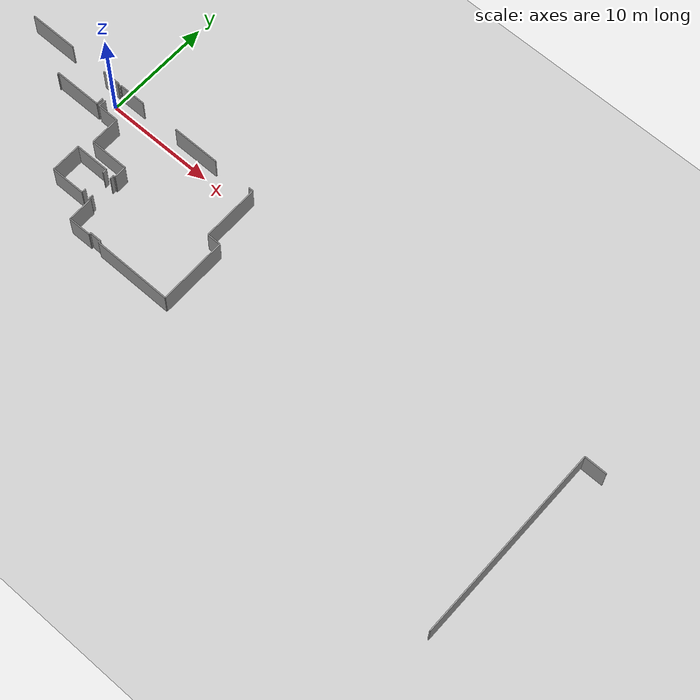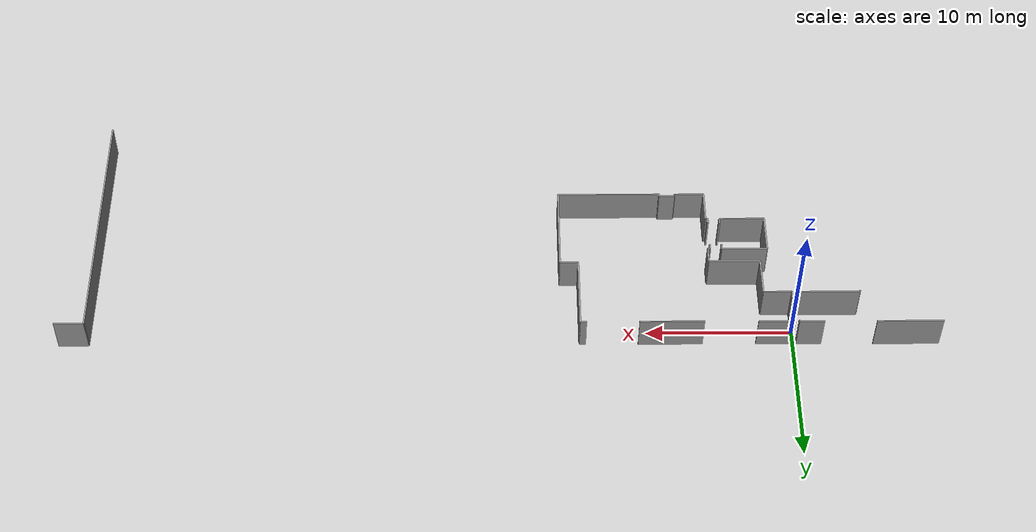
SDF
<sdf version="1.6">
 <world name="default">
  <model name="ground_plane">
   <static>1</static>
   <link name="link">
    <collision name="collision">
     <geometry><plane><normal>0 0 1</normal><size>100 100</size></plane></geometry>
     <surface><friction><ode><mu>100</mu><mu2>50</mu2></ode></friction></surface>
    </collision>
    <visual name="visual">
     <cast_shadows>0</cast_shadows>
     <geometry><plane><normal>0 0 1</normal><size>100 100</size></plane></geometry>
     <material>
      <script><uri>file://media/materials/scripts/gazebo.material</uri><name>Gazebo/Grey</name></script>
     </material>
    </visual>
   </link>
  </model>
  <model name="50057024">
   <static>1</static>
   <link name="Wall_139">
    <collision name="Wall_139_Collision">
     <geometry><box><size>0.13417286487 0.1 2.5</size></box></geometry>
     <pose>0.0670864324348 0 1.25 0 0 0</pose>
    </collision>
    <visual name="Wall_139_Visual">
     <pose>0.0670864324348 0 1.25 0 0 0</pose>
     <geometry><box><size>0.13417286487 0.1 2.5</size></box></geometry>
     <material>
      <script><uri>file://media/materials/scripts/gazebo.material</uri><name>Gazebo/Grey</name></script>
      <ambient>1 1 1 1</ambient>
     </material>
    </visual>
    <pose>51.512868801 -26.2854534041 0 0 0 1.57079632679</pose>
   </link>
   <link name="Wall_140">
    <collision name="Wall_140_Collision">
     <geometry><box><size>4.36886124268 0.1 2.5</size></box></geometry>
     <pose>2.18443062134 0 1.25 0 0 0</pose>
    </collision>
    <visual name="Wall_140_Visual">
     <pose>2.18443062134 0 1.25 0 0 0</pose>
     <geometry><box><size>4.36886124268 0.1 2.5</size></box></geometry>
     <material>
      <script><uri>file://media/materials/scripts/gazebo.material</uri><name>Gazebo/Grey</name></script>
      <ambient>1 1 1 1</ambient>
     </material>
    </visual>
    <pose>51.512868801 -26.1512805392 0 0 0 0.0</pose>
   </link>
   <link name="Wall_141">
    <collision name="Wall_141_Collision">
     <geometry><box><size>0.666425713507 0.1 2.5</size></box></geometry>
     <pose>0.333212856753 0 1.25 0 0 0</pose>
    </collision>
    <visual name="Wall_141_Visual">
     <pose>0.333212856753 0 1.25 0 0 0</pose>
     <geometry><box><size>0.666425713507 0.1 2.5</size></box></geometry>
     <material>
      <script><uri>file://media/materials/scripts/gazebo.material</uri><name>Gazebo/Grey</name></script>
      <ambient>1 1 1 1</ambient>
     </material>
    </visual>
    <pose>55.8817300437 -26.1512805392 0 0 0 1.57079632679</pose>
   </link>
   <link name="Wall_142">
    <collision name="Wall_142_Collision">
     <geometry><box><size>0.105512120578 0.1 2.5</size></box></geometry>
     <pose>0.052756060289 0 1.25 0 0 0</pose>
    </collision>
    <visual name="Wall_142_Visual">
     <pose>0.052756060289 0 1.25 0 0 0</pose>
     <geometry><box><size>0.105512120578 0.1 2.5</size></box></geometry>
     <material>
      <script><uri>file://media/materials/scripts/gazebo.material</uri><name>Gazebo/Grey</name></script>
      <ambient>1 1 1 1</ambient>
     </material>
    </visual>
    <pose>55.8817300437 -23.7059864179 0 0 0 1.57079632679</pose>
   </link>
   <link name="Wall_143">
    <collision name="Wall_143_Collision">
     <geometry><box><size>1.7126696976 0.1 2.5</size></box></geometry>
     <pose>0.856334848802 0 1.25 0 0 0</pose>
    </collision>
    <visual name="Wall_143_Visual">
     <pose>0.856334848802 0 1.25 0 0 0</pose>
     <geometry><box><size>1.7126696976 0.1 2.5</size></box></geometry>
     <material>
      <script><uri>file://media/materials/scripts/gazebo.material</uri><name>Gazebo/Grey</name></script>
      <ambient>1 1 1 1</ambient>
     </material>
    </visual>
    <pose>55.8817300437 -23.6004742973 0 0 0 3.14159265359</pose>
   </link>
   <link name="Wall_144">
    <collision name="Wall_144_Collision">
     <geometry><box><size>4.52611488393 0.1 2.5</size></box></geometry>
     <pose>2.26305744197 0 1.25 0 0 0</pose>
    </collision>
    <visual name="Wall_144_Visual">
     <pose>2.26305744197 0 1.25 0 0 0</pose>
     <geometry><box><size>4.52611488393 0.1 2.5</size></box></geometry>
     <material>
      <script><uri>file://media/materials/scripts/gazebo.material</uri><name>Gazebo/Grey</name></script>
      <ambient>1 1 1 1</ambient>
     </material>
    </visual>
    <pose>50.6210884742 -23.6004742973 0 0 0 3.14159265359</pose>
   </link>
   <link name="Wall_146">
    <collision name="Wall_146_Collision">
     <geometry><box><size>2.77134179206 0.1 2.5</size></box></geometry>
     <pose>1.38567089603 0 1.25 0 0 0</pose>
    </collision>
    <visual name="Wall_146_Visual">
     <pose>1.38567089603 0 1.25 0 0 0</pose>
     <geometry><box><size>2.77134179206 0.1 2.5</size></box></geometry>
     <material>
      <script><uri>file://media/materials/scripts/gazebo.material</uri><name>Gazebo/Grey</name></script>
      <ambient>1 1 1 1</ambient>
     </material>
    </visual>
    <pose>57.544433665 -32.7678543121 0 0 0 1.57079632679</pose>
   </link>
   <link name="Wall_147">
    <collision name="Wall_147_Collision">
     <geometry><box><size>3.15483776877 0.1 2.5</size></box></geometry>
     <pose>1.57741888439 0 1.25 0 0 0</pose>
    </collision>
    <visual name="Wall_147_Visual">
     <pose>1.57741888439 0 1.25 0 0 0</pose>
     <geometry><box><size>3.15483776877 0.1 2.5</size></box></geometry>
     <material>
      <script><uri>file://media/materials/scripts/gazebo.material</uri><name>Gazebo/Grey</name></script>
      <ambient>1 1 1 1</ambient>
     </material>
    </visual>
    <pose>57.544433665 -29.9965125201 0 0 0 0.0</pose>
   </link>
   <link name="Wall_148">
    <collision name="Wall_148_Collision">
     <geometry><box><size>0.393134103115 0.1 2.5</size></box></geometry>
     <pose>0.196567051558 0 1.25 0 0 0</pose>
    </collision>
    <visual name="Wall_148_Visual">
     <pose>0.196567051558 0 1.25 0 0 0</pose>
     <geometry><box><size>0.393134103115 0.1 2.5</size></box></geometry>
     <material>
      <script><uri>file://media/materials/scripts/gazebo.material</uri><name>Gazebo/Grey</name></script>
      <ambient>1 1 1 1</ambient>
     </material>
    </visual>
    <pose>60.6992714337 -29.9965125201 0 0 0 -1.57079632679</pose>
   </link>
   <link name="Wall_149">
    <collision name="Wall_149_Collision">
     <geometry><box><size>0.391992746042 0.1 2.5</size></box></geometry>
     <pose>0.195996373021 0 1.25 0 0 0</pose>
    </collision>
    <visual name="Wall_149_Visual">
     <pose>0.195996373021 0 1.25 0 0 0</pose>
     <geometry><box><size>0.391992746042 0.1 2.5</size></box></geometry>
     <material>
      <script><uri>file://media/materials/scripts/gazebo.material</uri><name>Gazebo/Grey</name></script>
      <ambient>1 1 1 1</ambient>
     </material>
    </visual>
    <pose>60.6992714337 -32.3600093845 0 0 0 -1.57079632679</pose>
   </link>
   <link name="Wall_150">
    <collision name="Wall_150_Collision">
     <geometry><box><size>3.15487759492 0.1 2.5</size></box></geometry>
     <pose>1.57743879746 0 1.25 0 0 0</pose>
    </collision>
    <visual name="Wall_150_Visual">
     <pose>1.57743879746 0 1.25 0 0 0</pose>
     <geometry><box><size>3.15487759492 0.1 2.5</size></box></geometry>
     <material>
      <script><uri>file://media/materials/scripts/gazebo.material</uri><name>Gazebo/Grey</name></script>
      <ambient>1 1 1 1</ambient>
     </material>
    </visual>
    <pose>60.6992714337 -32.7520021305 0 0 0 -3.13656797425</pose>
   </link>
   <link name="Wall_151">
    <collision name="Wall_151_Collision">
     <geometry><box><size>2.30148313011 0.1 2.5</size></box></geometry>
     <pose>1.15074156505 0 1.25 0 0 0</pose>
    </collision>
    <visual name="Wall_151_Visual">
     <pose>1.15074156505 0 1.25 0 0 0</pose>
     <geometry><box><size>2.30148313011 0.1 2.5</size></box></geometry>
     <material>
      <script><uri>file://media/materials/scripts/gazebo.material</uri><name>Gazebo/Grey</name></script>
      <ambient>1 1 1 1</ambient>
     </material>
    </visual>
    <pose>61.6628304387 -35.0700983469 0 0 0 1.57079632679</pose>
   </link>
   <link name="Wall_152">
    <collision name="Wall_152_Collision">
     <geometry><box><size>0.1501518639 0.1 2.5</size></box></geometry>
     <pose>0.0750759319498 0 1.25 0 0 0</pose>
    </collision>
    <visual name="Wall_152_Visual">
     <pose>0.0750759319498 0 1.25 0 0 0</pose>
     <geometry><box><size>0.1501518639 0.1 2.5</size></box></geometry>
     <material>
      <script><uri>file://media/materials/scripts/gazebo.material</uri><name>Gazebo/Grey</name></script>
      <ambient>1 1 1 1</ambient>
     </material>
    </visual>
    <pose>61.6628304387 -32.7686152168 0 0 0 3.14159265359</pose>
   </link>
   <link name="Wall_153">
    <collision name="Wall_153_Collision">
     <geometry><box><size>0.391865928589 0.1 2.5</size></box></geometry>
     <pose>0.195932964295 0 1.25 0 0 0</pose>
    </collision>
    <visual name="Wall_153_Visual">
     <pose>0.195932964295 0 1.25 0 0 0</pose>
     <geometry><box><size>0.391865928589 0.1 2.5</size></box></geometry>
     <material>
      <script><uri>file://media/materials/scripts/gazebo.material</uri><name>Gazebo/Grey</name></script>
      <ambient>1 1 1 1</ambient>
     </material>
    </visual>
    <pose>61.5126785748 -32.7686152168 0 0 0 1.57079632679</pose>
   </link>
   <link name="Wall_154">
    <collision name="Wall_154_Collision">
     <geometry><box><size>0.372082405981 0.1 2.5</size></box></geometry>
     <pose>0.18604120299 0 1.25 0 0 0</pose>
    </collision>
    <visual name="Wall_154_Visual">
     <pose>0.18604120299 0 1.25 0 0 0</pose>
     <geometry><box><size>0.372082405981 0.1 2.5</size></box></geometry>
     <material>
      <script><uri>file://media/materials/scripts/gazebo.material</uri><name>Gazebo/Grey</name></script>
      <ambient>1 1 1 1</ambient>
     </material>
    </visual>
    <pose>61.5126785748 -30.3925634246 0 0 0 1.57079632679</pose>
   </link>
   <link name="Wall_155">
    <collision name="Wall_155_Collision">
     <geometry><box><size>0.163340878972 0.1 2.5</size></box></geometry>
     <pose>0.0816704394859 0 1.25 0 0 0</pose>
    </collision>
    <visual name="Wall_155_Visual">
     <pose>0.0816704394859 0 1.25 0 0 0</pose>
     <geometry><box><size>0.163340878972 0.1 2.5</size></box></geometry>
     <material>
      <script><uri>file://media/materials/scripts/gazebo.material</uri><name>Gazebo/Grey</name></script>
      <ambient>1 1 1 1</ambient>
     </material>
    </visual>
    <pose>61.5126785748 -30.0204810186 0 0 0 0.0</pose>
   </link>
   <link name="Wall_156">
    <collision name="Wall_156_Collision">
     <geometry><box><size>1.14744431129 0.1 2.5</size></box></geometry>
     <pose>0.573722155643 0 1.25 0 0 0</pose>
    </collision>
    <visual name="Wall_156_Visual">
     <pose>0.573722155643 0 1.25 0 0 0</pose>
     <geometry><box><size>1.14744431129 0.1 2.5</size></box></geometry>
     <material>
      <script><uri>file://media/materials/scripts/gazebo.material</uri><name>Gazebo/Grey</name></script>
      <ambient>1 1 1 1</ambient>
     </material>
    </visual>
    <pose>61.6760194538 -30.0204810186 0 0 0 1.57079632679</pose>
   </link>
   <link name="Wall_157">
    <collision name="Wall_157_Collision">
     <geometry><box><size>3.54657687991 0.1 2.5</size></box></geometry>
     <pose>1.77328843996 0 1.25 0 0 0</pose>
    </collision>
    <visual name="Wall_157_Visual">
     <pose>1.77328843996 0 1.25 0 0 0</pose>
     <geometry><box><size>3.54657687991 0.1 2.5</size></box></geometry>
     <material>
      <script><uri>file://media/materials/scripts/gazebo.material</uri><name>Gazebo/Grey</name></script>
      <ambient>1 1 1 1</ambient>
     </material>
    </visual>
    <pose>61.6760194538 -28.8730367073 0 0 0 3.14159265359</pose>
   </link>
   <link name="Wall_158">
    <collision name="Wall_158_Collision">
     <geometry><box><size>2.71224485914 0.1 2.5</size></box></geometry>
     <pose>1.35612242957 0 1.25 0 0 0</pose>
    </collision>
    <visual name="Wall_158_Visual">
     <pose>1.35612242957 0 1.25 0 0 0</pose>
     <geometry><box><size>2.71224485914 0.1 2.5</size></box></geometry>
     <material>
      <script><uri>file://media/materials/scripts/gazebo.material</uri><name>Gazebo/Grey</name></script>
      <ambient>1 1 1 1</ambient>
     </material>
    </visual>
    <pose>58.1294425739 -28.8730367073 0 0 0 1.57079632679</pose>
   </link>
   <link name="Wall_159">
    <collision name="Wall_159_Collision">
     <geometry><box><size>1.95628602408 0.1 2.5</size></box></geometry>
     <pose>0.978143012041 0 1.25 0 0 0</pose>
    </collision>
    <visual name="Wall_159_Visual">
     <pose>0.978143012041 0 1.25 0 0 0</pose>
     <geometry><box><size>1.95628602408 0.1 2.5</size></box></geometry>
     <material>
      <script><uri>file://media/materials/scripts/gazebo.material</uri><name>Gazebo/Grey</name></script>
      <ambient>1 1 1 1</ambient>
     </material>
    </visual>
    <pose>58.1294425739 -26.1607918482 0 0 0 3.14159265359</pose>
   </link>
   <link name="Wall_160">
    <collision name="Wall_160_Collision">
     <geometry><box><size>0.671244776706 0.1 2.5</size></box></geometry>
     <pose>0.335622388353 0 1.25 0 0 0</pose>
    </collision>
    <visual name="Wall_160_Visual">
     <pose>0.335622388353 0 1.25 0 0 0</pose>
     <geometry><box><size>0.671244776706 0.1 2.5</size></box></geometry>
     <material>
      <script><uri>file://media/materials/scripts/gazebo.material</uri><name>Gazebo/Grey</name></script>
      <ambient>1 1 1 1</ambient>
     </material>
    </visual>
    <pose>56.1731565498 -26.1607918482 0 0 0 1.57079632679</pose>
   </link>
   <link name="Wall_161">
    <collision name="Wall_161_Collision">
     <geometry><box><size>0.107160747462 0.1 2.5</size></box></geometry>
     <pose>0.053580373731 0 1.25 0 0 0</pose>
    </collision>
    <visual name="Wall_161_Visual">
     <pose>0.053580373731 0 1.25 0 0 0</pose>
     <geometry><box><size>0.107160747462 0.1 2.5</size></box></geometry>
     <material>
      <script><uri>file://media/materials/scripts/gazebo.material</uri><name>Gazebo/Grey</name></script>
      <ambient>1 1 1 1</ambient>
     </material>
    </visual>
    <pose>56.1731565498 -23.721711782 0 0 0 1.57079632679</pose>
   </link>
   <link name="Wall_162">
    <collision name="Wall_162_Collision">
     <geometry><box><size>2.48283208735 0.1 2.5</size></box></geometry>
     <pose>1.24141604368 0 1.25 0 0 0</pose>
    </collision>
    <visual name="Wall_162_Visual">
     <pose>1.24141604368 0 1.25 0 0 0</pose>
     <geometry><box><size>2.48283208735 0.1 2.5</size></box></geometry>
     <material>
      <script><uri>file://media/materials/scripts/gazebo.material</uri><name>Gazebo/Grey</name></script>
      <ambient>1 1 1 1</ambient>
     </material>
    </visual>
    <pose>56.1731565498 -23.6145510345 0 0 0 0.0</pose>
   </link>
   <link name="Wall_163">
    <collision name="Wall_163_Collision">
     <geometry><box><size>4.41109145441 0.1 2.5</size></box></geometry>
     <pose>2.2055457272 0 1.25 0 0 0</pose>
    </collision>
    <visual name="Wall_163_Visual">
     <pose>2.2055457272 0 1.25 0 0 0</pose>
     <geometry><box><size>4.41109145441 0.1 2.5</size></box></geometry>
     <material>
      <script><uri>file://media/materials/scripts/gazebo.material</uri><name>Gazebo/Grey</name></script>
      <ambient>1 1 1 1</ambient>
     </material>
    </visual>
    <pose>62.3007222254 -23.6145510345 0 0 0 0.0</pose>
   </link>
   <link name="Wall_164">
    <collision name="Wall_164_Collision">
     <geometry><box><size>0.431559791258 0.1 2.5</size></box></geometry>
     <pose>0.215779895629 0 1.25 0 0 0</pose>
    </collision>
    <visual name="Wall_164_Visual">
     <pose>0.215779895629 0 1.25 0 0 0</pose>
     <geometry><box><size>0.431559791258 0.1 2.5</size></box></geometry>
     <material>
      <script><uri>file://media/materials/scripts/gazebo.material</uri><name>Gazebo/Grey</name></script>
      <ambient>1 1 1 1</ambient>
     </material>
    </visual>
    <pose>70.2980844224 -23.6145510345 0 0 0 0.0</pose>
   </link>
   <link name="Wall_165">
    <collision name="Wall_165_Collision">
     <geometry><box><size>5.21105594552 0.1 2.5</size></box></geometry>
     <pose>2.60552797276 0 1.25 0 0 0</pose>
    </collision>
    <visual name="Wall_165_Visual">
     <pose>2.60552797276 0 1.25 0 0 0</pose>
     <geometry><box><size>5.21105594552 0.1 2.5</size></box></geometry>
     <material>
      <script><uri>file://media/materials/scripts/gazebo.material</uri><name>Gazebo/Grey</name></script>
      <ambient>1 1 1 1</ambient>
     </material>
    </visual>
    <pose>70.7296442136 -23.6145510345 0 0 0 -1.57079632679</pose>
   </link>
   <link name="Wall_166">
    <collision name="Wall_166_Collision">
     <geometry><box><size>1.26779407382 0.1 2.5</size></box></geometry>
     <pose>0.63389703691 0 1.25 0 0 0</pose>
    </collision>
    <visual name="Wall_166_Visual">
     <pose>0.63389703691 0 1.25 0 0 0</pose>
     <geometry><box><size>1.26779407382 0.1 2.5</size></box></geometry>
     <material>
      <script><uri>file://media/materials/scripts/gazebo.material</uri><name>Gazebo/Grey</name></script>
      <ambient>1 1 1 1</ambient>
     </material>
    </visual>
    <pose>70.7296442136 -28.82560698 0 0 0 0.0</pose>
   </link>
   <link name="Wall_167">
    <collision name="Wall_167_Collision">
     <geometry><box><size>6.22673692354 0.1 2.5</size></box></geometry>
     <pose>3.11336846177 0 1.25 0 0 0</pose>
    </collision>
    <visual name="Wall_167_Visual">
     <pose>3.11336846177 0 1.25 0 0 0</pose>
     <geometry><box><size>6.22673692354 0.1 2.5</size></box></geometry>
     <material>
      <script><uri>file://media/materials/scripts/gazebo.material</uri><name>Gazebo/Grey</name></script>
      <ambient>1 1 1 1</ambient>
     </material>
    </visual>
    <pose>71.9974382875 -28.82560698 0 0 0 -1.57079632679</pose>
   </link>
   <link name="Wall_168">
    <collision name="Wall_168_Collision">
     <geometry><box><size>7.17786781817 0.1 2.5</size></box></geometry>
     <pose>3.58893390908 0 1.25 0 0 0</pose>
    </collision>
    <visual name="Wall_168_Visual">
     <pose>3.58893390908 0 1.25 0 0 0</pose>
     <geometry><box><size>7.17786781817 0.1 2.5</size></box></geometry>
     <material>
      <script><uri>file://media/materials/scripts/gazebo.material</uri><name>Gazebo/Grey</name></script>
      <ambient>1 1 1 1</ambient>
     </material>
    </visual>
    <pose>71.9974382875 -35.0523439036 0 0 0 3.14159265359</pose>
   </link>
   <link name="Wall_169">
    <collision name="Wall_169_Collision">
     <geometry><box><size>0.177544433665 0.1 2.5</size></box></geometry>
     <pose>0.0887722168325 0 1.25 0 0 0</pose>
    </collision>
    <visual name="Wall_169_Visual">
     <pose>0.0887722168325 0 1.25 0 0 0</pose>
     <geometry><box><size>0.177544433665 0.1 2.5</size></box></geometry>
     <material>
      <script><uri>file://media/materials/scripts/gazebo.material</uri><name>Gazebo/Grey</name></script>
      <ambient>1 1 1 1</ambient>
     </material>
    </visual>
    <pose>64.8195704693 -35.0523439036 0 0 0 1.57079632679</pose>
   </link>
   <link name="Wall_170">
    <collision name="Wall_170_Collision">
     <geometry><box><size>1.07794834725 0.1 2.5</size></box></geometry>
     <pose>0.538974173626 0 1.25 0 0 0</pose>
    </collision>
    <visual name="Wall_170_Visual">
     <pose>0.538974173626 0 1.25 0 0 0</pose>
     <geometry><box><size>1.07794834725 0.1 2.5</size></box></geometry>
     <material>
      <script><uri>file://media/materials/scripts/gazebo.material</uri><name>Gazebo/Grey</name></script>
      <ambient>1 1 1 1</ambient>
     </material>
    </visual>
    <pose>64.8195704693 -34.8747994699 0 0 0 3.14159265359</pose>
   </link>
   <link name="Wall_171">
    <collision name="Wall_171_Collision">
     <geometry><box><size>0.164862688403 0.1 2.5</size></box></geometry>
     <pose>0.0824313442016 0 1.25 0 0 0</pose>
    </collision>
    <visual name="Wall_171_Visual">
     <pose>0.0824313442016 0 1.25 0 0 0</pose>
     <geometry><box><size>0.164862688403 0.1 2.5</size></box></geometry>
     <material>
      <script><uri>file://media/materials/scripts/gazebo.material</uri><name>Gazebo/Grey</name></script>
      <ambient>1 1 1 1</ambient>
     </material>
    </visual>
    <pose>63.741622122 -34.8747994699 0 0 0 -1.57079632679</pose>
   </link>
   <link name="Wall_172">
    <collision name="Wall_172_Collision">
     <geometry><box><size>2.07901448388 0.1 2.5</size></box></geometry>
     <pose>1.03950724194 0 1.25 0 0 0</pose>
    </collision>
    <visual name="Wall_172_Visual">
     <pose>1.03950724194 0 1.25 0 0 0</pose>
     <geometry><box><size>2.07901448388 0.1 2.5</size></box></geometry>
     <material>
      <script><uri>file://media/materials/scripts/gazebo.material</uri><name>Gazebo/Grey</name></script>
      <ambient>1 1 1 1</ambient>
     </material>
    </visual>
    <pose>63.741622122 -35.0396621583 0 0 0 -3.12695241123</pose>
   </link>
   <link name="Wall_192">
    <collision name="Wall_192_Collision">
     <geometry><box><size>17.8617309314 0.1 2.5</size></box></geometry>
     <pose>8.93086546571 0 1.25 0 0 0</pose>
    </collision>
    <visual name="Wall_192_Visual">
     <pose>8.93086546571 0 1.25 0 0 0</pose>
     <geometry><box><size>17.8617309314 0.1 2.5</size></box></geometry>
     <material>
      <script><uri>file://media/materials/scripts/gazebo.material</uri><name>Gazebo/Grey</name></script>
      <ambient>1 1 1 1</ambient>
     </material>
    </visual>
    <pose>104.342483213 -41.4780574103 0 0 0 1.57079632679</pose>
   </link>
   <link name="Wall_193">
    <collision name="Wall_193_Collision">
     <geometry><box><size>2.06052997013 0.1 2.5</size></box></geometry>
     <pose>1.03026498507 0 1.25 0 0 0</pose>
    </collision>
    <visual name="Wall_193_Visual">
     <pose>1.03026498507 0 1.25 0 0 0</pose>
     <geometry><box><size>2.06052997013 0.1 2.5</size></box></geometry>
     <material>
      <script><uri>file://media/materials/scripts/gazebo.material</uri><name>Gazebo/Grey</name></script>
      <ambient>1 1 1 1</ambient>
     </material>
    </visual>
    <pose>104.342483213 -23.6163264789 0 0 0 0.0</pose>
   </link>
   <pose>-56.15 24.49446315 0 0 0 0</pose>
  </model>
 </world>
</sdf>
